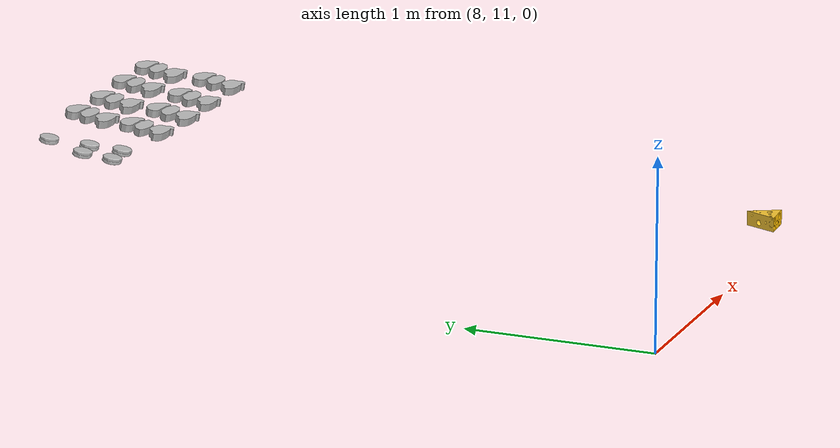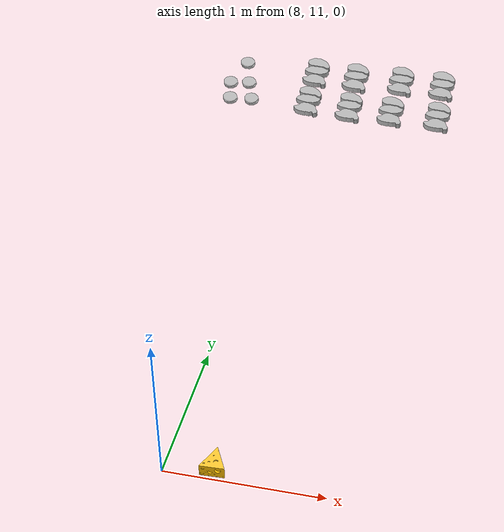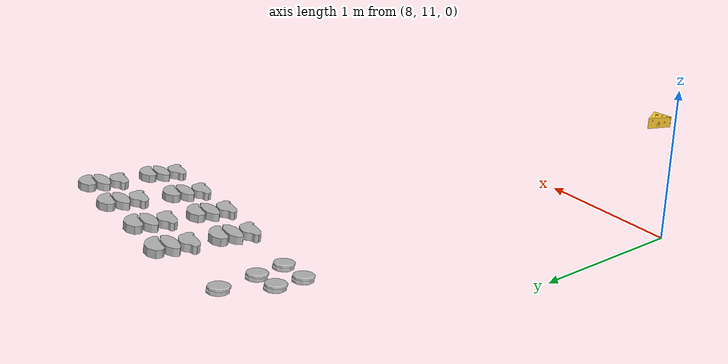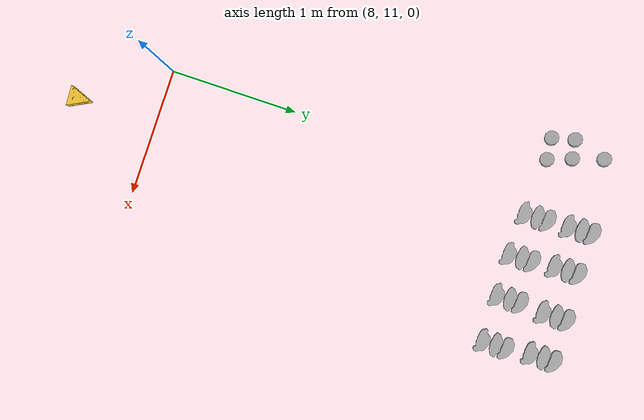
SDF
<sdf version="1.6">
 <world name="default">
  <model name="burger_clone_5">
   <link name="link_1">
    <inertial>
     <mass>1</mass>
     <inertia>
      <ixx>0.166667</ixx>
      <ixy>0</ixy>
      <ixz>0</ixz>
      <iyy>0.166667</iyy>
      <iyz>0</iyz>
      <izz>0.166667</izz>
     </inertia>
    </inertial>
    <visual name="visual">
     <geometry><mesh><uri>model://burger/meshes/burger.dae</uri><scale>1 1 1</scale></mesh></geometry>
    </visual>
    <collision name="collision">
     <geometry><mesh><uri>model://burger/meshes/burger.dae</uri><scale>1 1 1</scale></mesh></geometry>
     <surface>
      <friction>
       <ode><mu>1</mu><mu2>1</mu2><fdir1>0 0 0</fdir1><slip1>0</slip1><slip2>0</slip2></ode>
       <torsional>
        <coefficient>1</coefficient>
        <patch_radius>0</patch_radius>
        <surface_radius>0</surface_radius>
        <use_patch_radius>1</use_patch_radius>
        <ode><slip>0</slip></ode>
       </torsional>
      </friction>
      <bounce><restitution_coefficient>0</restitution_coefficient><threshold>1e+06</threshold></bounce>
      <contact>
       <collide_without_contact>0</collide_without_contact>
       <collide_without_contact_bitmask>1</collide_without_contact_bitmask>
       <collide_bitmask>1</collide_bitmask>
       <ode>
        <soft_cfm>0</soft_cfm>
        <soft_erp>0.2</soft_erp>
        <kp>1e+13</kp>
        <kd>1</kd>
        <max_vel>0.01</max_vel>
        <min_depth>0</min_depth>
       </ode>
       <bullet>
        <split_impulse>1</split_impulse>
        <split_impulse_penetration_threshold>-0.01</split_impulse_penetration_threshold>
        <soft_cfm>0</soft_cfm>
        <soft_erp>0.2</soft_erp>
        <kp>1e+13</kp>
        <kd>1</kd>
       </bullet>
      </contact>
     </surface>
    </collision>
   </link>
   <static>1</static>
   <pose>7.71256 14.1251 0.782281 0.179017 -0 0.267231</pose>
  </model>
  <model name="burger_clone_6_clone_4">
   <link name="link_1">
    <inertial>
     <mass>1</mass>
     <inertia>
      <ixx>0.166667</ixx>
      <ixy>0</ixy>
      <ixz>0</ixz>
      <iyy>0.166667</iyy>
      <iyz>0</iyz>
      <izz>0.166667</izz>
     </inertia>
    </inertial>
    <visual name="visual">
     <geometry><mesh><uri>model://burger/meshes/burger.dae</uri><scale>1 1 1</scale></mesh></geometry>
    </visual>
    <collision name="collision">
     <geometry><mesh><uri>model://burger/meshes/burger.dae</uri><scale>1 1 1</scale></mesh></geometry>
     <surface>
      <friction>
       <ode><mu>1</mu><mu2>1</mu2><fdir1>0 0 0</fdir1><slip1>0</slip1><slip2>0</slip2></ode>
       <torsional>
        <coefficient>1</coefficient>
        <patch_radius>0</patch_radius>
        <surface_radius>0</surface_radius>
        <use_patch_radius>1</use_patch_radius>
        <ode><slip>0</slip></ode>
       </torsional>
      </friction>
      <bounce><restitution_coefficient>0</restitution_coefficient><threshold>1e+06</threshold></bounce>
      <contact>
       <collide_without_contact>0</collide_without_contact>
       <collide_without_contact_bitmask>1</collide_without_contact_bitmask>
       <collide_bitmask>1</collide_bitmask>
       <ode>
        <soft_cfm>0</soft_cfm>
        <soft_erp>0.2</soft_erp>
        <kp>1e+13</kp>
        <kd>1</kd>
        <max_vel>0.01</max_vel>
        <min_depth>0</min_depth>
       </ode>
       <bullet>
        <split_impulse>1</split_impulse>
        <split_impulse_penetration_threshold>-0.01</split_impulse_penetration_threshold>
        <soft_cfm>0</soft_cfm>
        <soft_erp>0.2</soft_erp>
        <kp>1e+13</kp>
        <kd>1</kd>
       </bullet>
      </contact>
     </surface>
    </collision>
   </link>
   <static>1</static>
   <pose>7.64466 13.9082 0.753962 0.179017 -0 0.267231</pose>
  </model>
  <model name="burger_clone_6_clone_5">
   <link name="link_1">
    <inertial>
     <mass>1</mass>
     <inertia>
      <ixx>0.166667</ixx>
      <ixy>0</ixy>
      <ixz>0</ixz>
      <iyy>0.166667</iyy>
      <iyz>0</iyz>
      <izz>0.166667</izz>
     </inertia>
    </inertial>
    <visual name="visual">
     <geometry><mesh><uri>model://burger/meshes/burger.dae</uri><scale>1 1 1</scale></mesh></geometry>
    </visual>
    <collision name="collision">
     <geometry><mesh><uri>model://burger/meshes/burger.dae</uri><scale>1 1 1</scale></mesh></geometry>
     <surface>
      <friction>
       <ode><mu>1</mu><mu2>1</mu2><fdir1>0 0 0</fdir1><slip1>0</slip1><slip2>0</slip2></ode>
       <torsional>
        <coefficient>1</coefficient>
        <patch_radius>0</patch_radius>
        <surface_radius>0</surface_radius>
        <use_patch_radius>1</use_patch_radius>
        <ode><slip>0</slip></ode>
       </torsional>
      </friction>
      <bounce><restitution_coefficient>0</restitution_coefficient><threshold>1e+06</threshold></bounce>
      <contact>
       <collide_without_contact>0</collide_without_contact>
       <collide_without_contact_bitmask>1</collide_without_contact_bitmask>
       <collide_bitmask>1</collide_bitmask>
       <ode>
        <soft_cfm>0</soft_cfm>
        <soft_erp>0.2</soft_erp>
        <kp>1e+13</kp>
        <kd>1</kd>
        <max_vel>0.01</max_vel>
        <min_depth>0</min_depth>
       </ode>
       <bullet>
        <split_impulse>1</split_impulse>
        <split_impulse_penetration_threshold>-0.01</split_impulse_penetration_threshold>
        <soft_cfm>0</soft_cfm>
        <soft_erp>0.2</soft_erp>
        <kp>1e+13</kp>
        <kd>1</kd>
       </bullet>
      </contact>
     </surface>
    </collision>
   </link>
   <static>1</static>
   <pose>7.77114 13.9308 0.753962 0.179017 -0 0.267231</pose>
  </model>
  <model name="burger_clone_6_clone_6_clone_4">
   <link name="link_1">
    <inertial>
     <mass>1</mass>
     <inertia>
      <ixx>0.166667</ixx>
      <ixy>0</ixy>
      <ixz>0</ixz>
      <iyy>0.166667</iyy>
      <iyz>0</iyz>
      <izz>0.166667</izz>
     </inertia>
    </inertial>
    <visual name="visual">
     <geometry><mesh><uri>model://burger/meshes/burger.dae</uri><scale>1 1 1</scale></mesh></geometry>
    </visual>
    <collision name="collision">
     <geometry><mesh><uri>model://burger/meshes/burger.dae</uri><scale>1 1 1</scale></mesh></geometry>
     <surface>
      <friction>
       <ode><mu>1</mu><mu2>1</mu2><fdir1>0 0 0</fdir1><slip1>0</slip1><slip2>0</slip2></ode>
       <torsional>
        <coefficient>1</coefficient>
        <patch_radius>0</patch_radius>
        <surface_radius>0</surface_radius>
        <use_patch_radius>1</use_patch_radius>
        <ode><slip>0</slip></ode>
       </torsional>
      </friction>
      <bounce><restitution_coefficient>0</restitution_coefficient><threshold>1e+06</threshold></bounce>
      <contact>
       <collide_without_contact>0</collide_without_contact>
       <collide_without_contact_bitmask>1</collide_without_contact_bitmask>
       <collide_bitmask>1</collide_bitmask>
       <ode>
        <soft_cfm>0</soft_cfm>
        <soft_erp>0.2</soft_erp>
        <kp>1e+13</kp>
        <kd>1</kd>
        <max_vel>0.01</max_vel>
        <min_depth>0</min_depth>
       </ode>
       <bullet>
        <split_impulse>1</split_impulse>
        <split_impulse_penetration_threshold>-0.01</split_impulse_penetration_threshold>
        <soft_cfm>0</soft_cfm>
        <soft_erp>0.2</soft_erp>
        <kp>1e+13</kp>
        <kd>1</kd>
       </bullet>
      </contact>
     </surface>
    </collision>
   </link>
   <static>1</static>
   <pose>7.67905 13.7625 0.728112 0.179017 -0 0.267231</pose>
  </model>
  <model name="burger_clone_6_clone_6_clone_5">
   <link name="link_1">
    <inertial>
     <mass>1</mass>
     <inertia>
      <ixx>0.166667</ixx>
      <ixy>0</ixy>
      <ixz>0</ixz>
      <iyy>0.166667</iyy>
      <iyz>0</iyz>
      <izz>0.166667</izz>
     </inertia>
    </inertial>
    <visual name="visual">
     <geometry><mesh><uri>model://burger/meshes/burger.dae</uri><scale>1 1 1</scale></mesh></geometry>
    </visual>
    <collision name="collision">
     <geometry><mesh><uri>model://burger/meshes/burger.dae</uri><scale>1 1 1</scale></mesh></geometry>
     <surface>
      <friction>
       <ode><mu>1</mu><mu2>1</mu2><fdir1>0 0 0</fdir1><slip1>0</slip1><slip2>0</slip2></ode>
       <torsional>
        <coefficient>1</coefficient>
        <patch_radius>0</patch_radius>
        <surface_radius>0</surface_radius>
        <use_patch_radius>1</use_patch_radius>
        <ode><slip>0</slip></ode>
       </torsional>
      </friction>
      <bounce><restitution_coefficient>0</restitution_coefficient><threshold>1e+06</threshold></bounce>
      <contact>
       <collide_without_contact>0</collide_without_contact>
       <collide_without_contact_bitmask>1</collide_without_contact_bitmask>
       <collide_bitmask>1</collide_bitmask>
       <ode>
        <soft_cfm>0</soft_cfm>
        <soft_erp>0.2</soft_erp>
        <kp>1e+13</kp>
        <kd>1</kd>
        <max_vel>0.01</max_vel>
        <min_depth>0</min_depth>
       </ode>
       <bullet>
        <split_impulse>1</split_impulse>
        <split_impulse_penetration_threshold>-0.01</split_impulse_penetration_threshold>
        <soft_cfm>0</soft_cfm>
        <soft_erp>0.2</soft_erp>
        <kp>1e+13</kp>
        <kd>1</kd>
       </bullet>
      </contact>
     </surface>
    </collision>
   </link>
   <static>1</static>
   <pose>7.82612 13.7783 0.728112 0.179017 -0 0.267231</pose>
  </model>
  <model name="beef">
   <link name="link_4">
    <inertial>
     <mass>1</mass>
     <inertia>
      <ixx>0.166667</ixx>
      <ixy>0</ixy>
      <ixz>0</ixz>
      <iyy>0.166667</iyy>
      <iyz>0</iyz>
      <izz>0.166667</izz>
     </inertia>
    </inertial>
    <visual name="visual">
     <geometry><mesh><uri>model://beef/meshes/beef.dae</uri><scale>1 1 1</scale></mesh></geometry>
    </visual>
    <collision name="collision">
     <geometry><mesh><uri>model://beef/meshes/beef.dae</uri><scale>1 1 1</scale></mesh></geometry>
     <surface>
      <friction>
       <ode><mu>1</mu><mu2>1</mu2><fdir1>0 0 0</fdir1><slip1>0</slip1><slip2>0</slip2></ode>
       <torsional>
        <coefficient>1</coefficient>
        <patch_radius>0</patch_radius>
        <surface_radius>0</surface_radius>
        <use_patch_radius>1</use_patch_radius>
        <ode><slip>0</slip></ode>
       </torsional>
      </friction>
      <bounce><restitution_coefficient>0</restitution_coefficient><threshold>1e+06</threshold></bounce>
      <contact>
       <collide_without_contact>0</collide_without_contact>
       <collide_without_contact_bitmask>1</collide_without_contact_bitmask>
       <collide_bitmask>1</collide_bitmask>
       <ode>
        <soft_cfm>0</soft_cfm>
        <soft_erp>0.2</soft_erp>
        <kp>1e+13</kp>
        <kd>1</kd>
        <max_vel>0.01</max_vel>
        <min_depth>0</min_depth>
       </ode>
       <bullet>
        <split_impulse>1</split_impulse>
        <split_impulse_penetration_threshold>-0.01</split_impulse_penetration_threshold>
        <soft_cfm>0</soft_cfm>
        <soft_erp>0.2</soft_erp>
        <kp>1e+13</kp>
        <kd>1</kd>
       </bullet>
      </contact>
     </surface>
    </collision>
   </link>
   <static>1</static>
   <pose>8.22896 14.0952 0.808432 0.17402 -0 0</pose>
  </model>
  <model name="beef_clone">
   <link name="link_4">
    <inertial>
     <mass>1</mass>
     <inertia>
      <ixx>0.166667</ixx>
      <ixy>0</ixy>
      <ixz>0</ixz>
      <iyy>0.166667</iyy>
      <iyz>0</iyz>
      <izz>0.166667</izz>
     </inertia>
    </inertial>
    <visual name="visual">
     <geometry><mesh><uri>model://beef/meshes/beef.dae</uri><scale>1 1 1</scale></mesh></geometry>
    </visual>
    <collision name="collision">
     <geometry><mesh><uri>model://beef/meshes/beef.dae</uri><scale>1 1 1</scale></mesh></geometry>
     <surface>
      <friction>
       <ode><mu>1</mu><mu2>1</mu2><fdir1>0 0 0</fdir1><slip1>0</slip1><slip2>0</slip2></ode>
       <torsional>
        <coefficient>1</coefficient>
        <patch_radius>0</patch_radius>
        <surface_radius>0</surface_radius>
        <use_patch_radius>1</use_patch_radius>
        <ode><slip>0</slip></ode>
       </torsional>
      </friction>
      <bounce><restitution_coefficient>0</restitution_coefficient><threshold>1e+06</threshold></bounce>
      <contact>
       <collide_without_contact>0</collide_without_contact>
       <collide_without_contact_bitmask>1</collide_without_contact_bitmask>
       <collide_bitmask>1</collide_bitmask>
       <ode>
        <soft_cfm>0</soft_cfm>
        <soft_erp>0.2</soft_erp>
        <kp>1e+13</kp>
        <kd>1</kd>
        <max_vel>0.01</max_vel>
        <min_depth>0</min_depth>
       </ode>
       <bullet>
        <split_impulse>1</split_impulse>
        <split_impulse_penetration_threshold>-0.01</split_impulse_penetration_threshold>
        <soft_cfm>0</soft_cfm>
        <soft_erp>0.2</soft_erp>
        <kp>1e+13</kp>
        <kd>1</kd>
       </bullet>
      </contact>
     </surface>
    </collision>
   </link>
   <static>1</static>
   <pose>8.5108 14.092 0.808432 0.17402 -0 0</pose>
  </model>
  <model name="beef_clone_0">
   <link name="link_4">
    <inertial>
     <mass>1</mass>
     <inertia>
      <ixx>0.166667</ixx>
      <ixy>0</ixy>
      <ixz>0</ixz>
      <iyy>0.166667</iyy>
      <iyz>0</iyz>
      <izz>0.166667</izz>
     </inertia>
    </inertial>
    <visual name="visual">
     <geometry><mesh><uri>model://beef/meshes/beef.dae</uri><scale>1 1 1</scale></mesh></geometry>
    </visual>
    <collision name="collision">
     <geometry><mesh><uri>model://beef/meshes/beef.dae</uri><scale>1 1 1</scale></mesh></geometry>
     <surface>
      <friction>
       <ode><mu>1</mu><mu2>1</mu2><fdir1>0 0 0</fdir1><slip1>0</slip1><slip2>0</slip2></ode>
       <torsional>
        <coefficient>1</coefficient>
        <patch_radius>0</patch_radius>
        <surface_radius>0</surface_radius>
        <use_patch_radius>1</use_patch_radius>
        <ode><slip>0</slip></ode>
       </torsional>
      </friction>
      <bounce><restitution_coefficient>0</restitution_coefficient><threshold>1e+06</threshold></bounce>
      <contact>
       <collide_without_contact>0</collide_without_contact>
       <collide_without_contact_bitmask>1</collide_without_contact_bitmask>
       <collide_bitmask>1</collide_bitmask>
       <ode>
        <soft_cfm>0</soft_cfm>
        <soft_erp>0.2</soft_erp>
        <kp>1e+13</kp>
        <kd>1</kd>
        <max_vel>0.01</max_vel>
        <min_depth>0</min_depth>
       </ode>
       <bullet>
        <split_impulse>1</split_impulse>
        <split_impulse_penetration_threshold>-0.01</split_impulse_penetration_threshold>
        <soft_cfm>0</soft_cfm>
        <soft_erp>0.2</soft_erp>
        <kp>1e+13</kp>
        <kd>1</kd>
       </bullet>
      </contact>
     </surface>
    </collision>
   </link>
   <static>1</static>
   <pose>8.82638 14.1192 0.808432 0.17402 -0 0</pose>
  </model>
  <model name="beef_clone_1">
   <link name="link_4">
    <inertial>
     <mass>1</mass>
     <inertia>
      <ixx>0.166667</ixx>
      <ixy>0</ixy>
      <ixz>0</ixz>
      <iyy>0.166667</iyy>
      <iyz>0</iyz>
      <izz>0.166667</izz>
     </inertia>
    </inertial>
    <visual name="visual">
     <geometry><mesh><uri>model://beef/meshes/beef.dae</uri><scale>1 1 1</scale></mesh></geometry>
    </visual>
    <collision name="collision">
     <geometry><mesh><uri>model://beef/meshes/beef.dae</uri><scale>1 1 1</scale></mesh></geometry>
     <surface>
      <friction>
       <ode><mu>1</mu><mu2>1</mu2><fdir1>0 0 0</fdir1><slip1>0</slip1><slip2>0</slip2></ode>
       <torsional>
        <coefficient>1</coefficient>
        <patch_radius>0</patch_radius>
        <surface_radius>0</surface_radius>
        <use_patch_radius>1</use_patch_radius>
        <ode><slip>0</slip></ode>
       </torsional>
      </friction>
      <bounce><restitution_coefficient>0</restitution_coefficient><threshold>1e+06</threshold></bounce>
      <contact>
       <collide_without_contact>0</collide_without_contact>
       <collide_without_contact_bitmask>1</collide_without_contact_bitmask>
       <collide_bitmask>1</collide_bitmask>
       <ode>
        <soft_cfm>0</soft_cfm>
        <soft_erp>0.2</soft_erp>
        <kp>1e+13</kp>
        <kd>1</kd>
        <max_vel>0.01</max_vel>
        <min_depth>0</min_depth>
       </ode>
       <bullet>
        <split_impulse>1</split_impulse>
        <split_impulse_penetration_threshold>-0.01</split_impulse_penetration_threshold>
        <soft_cfm>0</soft_cfm>
        <soft_erp>0.2</soft_erp>
        <kp>1e+13</kp>
        <kd>1</kd>
       </bullet>
      </contact>
     </surface>
    </collision>
   </link>
   <static>1</static>
   <pose>9.11348 14.1249 0.808432 0.17402 -0 0</pose>
  </model>
  <model name="beef_clone_2">
   <link name="link_4">
    <inertial>
     <mass>1</mass>
     <inertia>
      <ixx>0.166667</ixx>
      <ixy>0</ixy>
      <ixz>0</ixz>
      <iyy>0.166667</iyy>
      <iyz>0</iyz>
      <izz>0.166667</izz>
     </inertia>
    </inertial>
    <visual name="visual">
     <geometry><mesh><uri>model://beef/meshes/beef.dae</uri><scale>1 1 1</scale></mesh></geometry>
    </visual>
    <collision name="collision">
     <geometry><mesh><uri>model://beef/meshes/beef.dae</uri><scale>1 1 1</scale></mesh></geometry>
     <surface>
      <friction>
       <ode><mu>1</mu><mu2>1</mu2><fdir1>0 0 0</fdir1><slip1>0</slip1><slip2>0</slip2></ode>
       <torsional>
        <coefficient>1</coefficient>
        <patch_radius>0</patch_radius>
        <surface_radius>0</surface_radius>
        <use_patch_radius>1</use_patch_radius>
        <ode><slip>0</slip></ode>
       </torsional>
      </friction>
      <bounce><restitution_coefficient>0</restitution_coefficient><threshold>1e+06</threshold></bounce>
      <contact>
       <collide_without_contact>0</collide_without_contact>
       <collide_without_contact_bitmask>1</collide_without_contact_bitmask>
       <collide_bitmask>1</collide_bitmask>
       <ode>
        <soft_cfm>0</soft_cfm>
        <soft_erp>0.2</soft_erp>
        <kp>1e+13</kp>
        <kd>1</kd>
        <max_vel>0.01</max_vel>
        <min_depth>0</min_depth>
       </ode>
       <bullet>
        <split_impulse>1</split_impulse>
        <split_impulse_penetration_threshold>-0.01</split_impulse_penetration_threshold>
        <soft_cfm>0</soft_cfm>
        <soft_erp>0.2</soft_erp>
        <kp>1e+13</kp>
        <kd>1</kd>
       </bullet>
      </contact>
     </surface>
    </collision>
   </link>
   <static>1</static>
   <pose>8.23736 13.7965 0.773118 0.17402 -0 0</pose>
  </model>
  <model name="beef_clone_2_clone">
   <link name="link_4">
    <inertial>
     <mass>1</mass>
     <inertia>
      <ixx>0.166667</ixx>
      <ixy>0</ixy>
      <ixz>0</ixz>
      <iyy>0.166667</iyy>
      <iyz>0</iyz>
      <izz>0.166667</izz>
     </inertia>
    </inertial>
    <visual name="visual">
     <geometry><mesh><uri>model://beef/meshes/beef.dae</uri><scale>1 1 1</scale></mesh></geometry>
    </visual>
    <collision name="collision">
     <geometry><mesh><uri>model://beef/meshes/beef.dae</uri><scale>1 1 1</scale></mesh></geometry>
     <surface>
      <friction>
       <ode><mu>1</mu><mu2>1</mu2><fdir1>0 0 0</fdir1><slip1>0</slip1><slip2>0</slip2></ode>
       <torsional>
        <coefficient>1</coefficient>
        <patch_radius>0</patch_radius>
        <surface_radius>0</surface_radius>
        <use_patch_radius>1</use_patch_radius>
        <ode><slip>0</slip></ode>
       </torsional>
      </friction>
      <bounce><restitution_coefficient>0</restitution_coefficient><threshold>1e+06</threshold></bounce>
      <contact>
       <collide_without_contact>0</collide_without_contact>
       <collide_without_contact_bitmask>1</collide_without_contact_bitmask>
       <collide_bitmask>1</collide_bitmask>
       <ode>
        <soft_cfm>0</soft_cfm>
        <soft_erp>0.2</soft_erp>
        <kp>1e+13</kp>
        <kd>1</kd>
        <max_vel>0.01</max_vel>
        <min_depth>0</min_depth>
       </ode>
       <bullet>
        <split_impulse>1</split_impulse>
        <split_impulse_penetration_threshold>-0.01</split_impulse_penetration_threshold>
        <soft_cfm>0</soft_cfm>
        <soft_erp>0.2</soft_erp>
        <kp>1e+13</kp>
        <kd>1</kd>
       </bullet>
      </contact>
     </surface>
    </collision>
   </link>
   <static>1</static>
   <pose>8.5284 13.7855 0.773118 0.17402 -0 0</pose>
  </model>
  <model name="beef_clone_2_clone_0">
   <link name="link_4">
    <inertial>
     <mass>1</mass>
     <inertia>
      <ixx>0.166667</ixx>
      <ixy>0</ixy>
      <ixz>0</ixz>
      <iyy>0.166667</iyy>
      <iyz>0</iyz>
      <izz>0.166667</izz>
     </inertia>
    </inertial>
    <visual name="visual">
     <geometry><mesh><uri>model://beef/meshes/beef.dae</uri><scale>1 1 1</scale></mesh></geometry>
    </visual>
    <collision name="collision">
     <geometry><mesh><uri>model://beef/meshes/beef.dae</uri><scale>1 1 1</scale></mesh></geometry>
     <surface>
      <friction>
       <ode><mu>1</mu><mu2>1</mu2><fdir1>0 0 0</fdir1><slip1>0</slip1><slip2>0</slip2></ode>
       <torsional>
        <coefficient>1</coefficient>
        <patch_radius>0</patch_radius>
        <surface_radius>0</surface_radius>
        <use_patch_radius>1</use_patch_radius>
        <ode><slip>0</slip></ode>
       </torsional>
      </friction>
      <bounce><restitution_coefficient>0</restitution_coefficient><threshold>1e+06</threshold></bounce>
      <contact>
       <collide_without_contact>0</collide_without_contact>
       <collide_without_contact_bitmask>1</collide_without_contact_bitmask>
       <collide_bitmask>1</collide_bitmask>
       <ode>
        <soft_cfm>0</soft_cfm>
        <soft_erp>0.2</soft_erp>
        <kp>1e+13</kp>
        <kd>1</kd>
        <max_vel>0.01</max_vel>
        <min_depth>0</min_depth>
       </ode>
       <bullet>
        <split_impulse>1</split_impulse>
        <split_impulse_penetration_threshold>-0.01</split_impulse_penetration_threshold>
        <soft_cfm>0</soft_cfm>
        <soft_erp>0.2</soft_erp>
        <kp>1e+13</kp>
        <kd>1</kd>
       </bullet>
      </contact>
     </surface>
    </collision>
   </link>
   <static>1</static>
   <pose>8.81619 13.7976 0.773118 0.17402 -0 0</pose>
  </model>
  <model name="beef_clone_2_clone_1">
   <link name="link_4">
    <inertial>
     <mass>1</mass>
     <inertia>
      <ixx>0.166667</ixx>
      <ixy>0</ixy>
      <ixz>0</ixz>
      <iyy>0.166667</iyy>
      <iyz>0</iyz>
      <izz>0.166667</izz>
     </inertia>
    </inertial>
    <visual name="visual">
     <geometry><mesh><uri>model://beef/meshes/beef.dae</uri><scale>1 1 1</scale></mesh></geometry>
    </visual>
    <collision name="collision">
     <geometry><mesh><uri>model://beef/meshes/beef.dae</uri><scale>1 1 1</scale></mesh></geometry>
     <surface>
      <friction>
       <ode><mu>1</mu><mu2>1</mu2><fdir1>0 0 0</fdir1><slip1>0</slip1><slip2>0</slip2></ode>
       <torsional>
        <coefficient>1</coefficient>
        <patch_radius>0</patch_radius>
        <surface_radius>0</surface_radius>
        <use_patch_radius>1</use_patch_radius>
        <ode><slip>0</slip></ode>
       </torsional>
      </friction>
      <bounce><restitution_coefficient>0</restitution_coefficient><threshold>1e+06</threshold></bounce>
      <contact>
       <collide_without_contact>0</collide_without_contact>
       <collide_without_contact_bitmask>1</collide_without_contact_bitmask>
       <collide_bitmask>1</collide_bitmask>
       <ode>
        <soft_cfm>0</soft_cfm>
        <soft_erp>0.2</soft_erp>
        <kp>1e+13</kp>
        <kd>1</kd>
        <max_vel>0.01</max_vel>
        <min_depth>0</min_depth>
       </ode>
       <bullet>
        <split_impulse>1</split_impulse>
        <split_impulse_penetration_threshold>-0.01</split_impulse_penetration_threshold>
        <soft_cfm>0</soft_cfm>
        <soft_erp>0.2</soft_erp>
        <kp>1e+13</kp>
        <kd>1</kd>
       </bullet>
      </contact>
     </surface>
    </collision>
   </link>
   <static>1</static>
   <pose>9.13675 13.8059 0.773118 0.17402 -0 0</pose>
  </model>
  <model name="cheese_clone_3">
   <link name="link_6">
    <inertial>
     <mass>1</mass>
     <inertia>
      <ixx>0.166667</ixx>
      <ixy>0</ixy>
      <ixz>0</ixz>
      <iyy>0.166667</iyy>
      <iyz>0</iyz>
      <izz>0.166667</izz>
     </inertia>
    </inertial>
    <pose>3e-06 -3e-06 0 0 -0 0</pose>
    <visual name="visual">
     <geometry><mesh><uri>model://cheese/meshes/cheese.dae</uri><scale>0.02 0.02 0.02</scale></mesh></geometry>
    </visual>
    <collision name="collision">
     <geometry><mesh><uri>model://cheese/meshes/cheese.dae</uri><scale>0.02 0.02 0.02</scale></mesh></geometry>
     <surface>
      <friction>
       <ode><mu>1</mu><mu2>1</mu2><fdir1>0 0 0</fdir1><slip1>0</slip1><slip2>0</slip2></ode>
       <torsional>
        <coefficient>1</coefficient>
        <patch_radius>0</patch_radius>
        <surface_radius>0</surface_radius>
        <use_patch_radius>1</use_patch_radius>
        <ode><slip>0</slip></ode>
       </torsional>
      </friction>
      <bounce><restitution_coefficient>0</restitution_coefficient><threshold>1e+06</threshold></bounce>
      <contact>
       <collide_without_contact>0</collide_without_contact>
       <collide_without_contact_bitmask>1</collide_without_contact_bitmask>
       <collide_bitmask>1</collide_bitmask>
       <ode>
        <soft_cfm>0</soft_cfm>
        <soft_erp>0.2</soft_erp>
        <kp>1e+13</kp>
        <kd>1</kd>
        <max_vel>0.01</max_vel>
        <min_depth>0</min_depth>
       </ode>
       <bullet>
        <split_impulse>1</split_impulse>
        <split_impulse_penetration_threshold>-0.01</split_impulse_penetration_threshold>
        <soft_cfm>0</soft_cfm>
        <soft_erp>0.2</soft_erp>
        <kp>1e+13</kp>
        <kd>1</kd>
       </bullet>
      </contact>
     </surface>
    </collision>
   </link>
   <static>1</static>
   <pose>8.46883 10.6054 0.561894 0 -0 1.617</pose>
  </model>
 </world>
</sdf>
